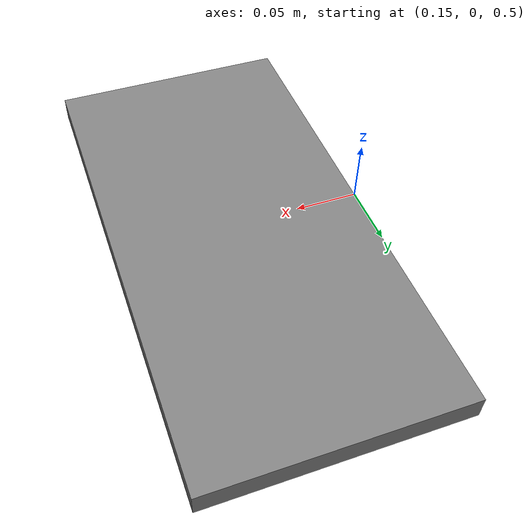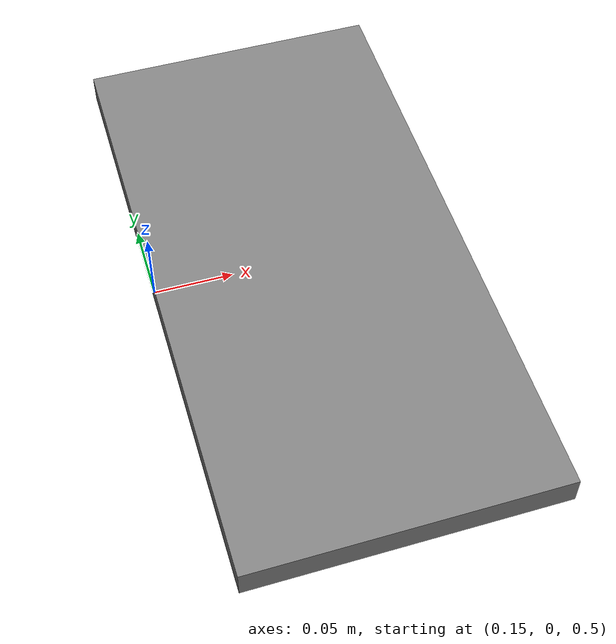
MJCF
<mujoco model="conveyer">

  <default>
    <joint damping=".3" axis="0 1 0"/>
    <geom type="box" friction=".5"/>
    <default class="wall">
      <geom rgba=".5 .5 .5 .4"/>
    </default>

  </default>
  <worldbody>
    <body name="conveyer" pos="0.25 0 0.5">
      <joint name="conveyor" type="slide" damping="100" axis="0 1 0"/>
      <geom size=".1 .2 .01" pos="0 0 -.01"/>
    </body>

  </worldbody>

  <actuator>
    <position name="conveyor"
              joint="conveyor"
              ctrlrange="0 0.5"
              ctrllimited="true"
              kp="400"
              />

  </actuator>

</mujoco>
